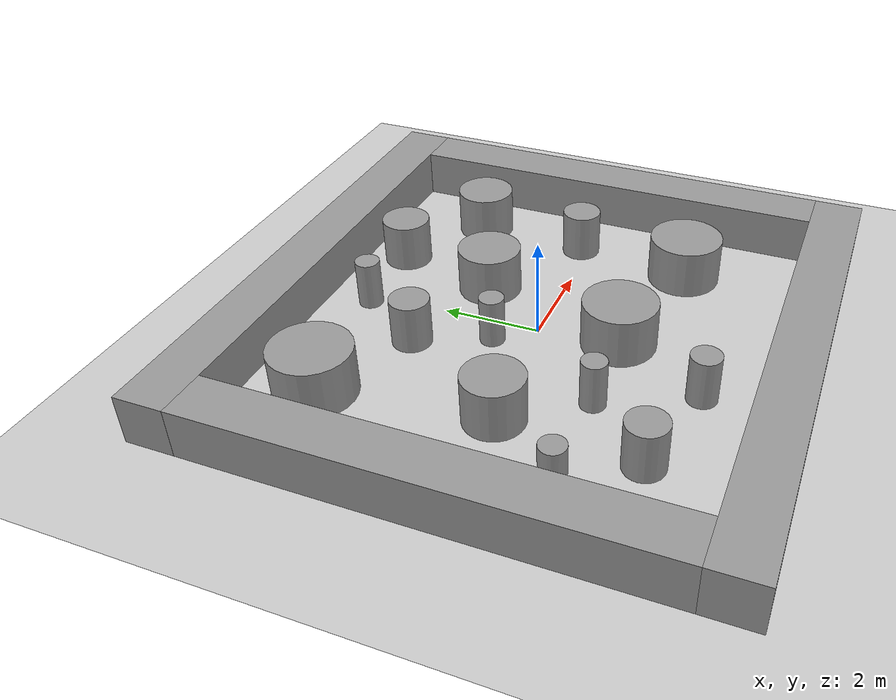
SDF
<?xml version="1.0" ?>
<sdf version="1.6">
  <world name="default">
    <include><uri>model://sun</uri></include>
    <include><uri>model://ground_plane</uri></include>

    <model name='wall_north'>
      <static>true</static>
      <pose>0 5.0 0.5 0 0 0</pose>
      <link name='link'><collision name='collision'><geometry><box><size>11.0 1.0 1.0</size></box></geometry></collision><visual name='visual'><geometry><box><size>11.0 1.0 1.0</size></box></geometry><material><script><uri>file://media/materials/scripts/gazebo.material</uri><name>Gazebo/Grey</name></script></material></visual></link>
    </model>
    <model name='wall_south'>
      <static>true</static>
      <pose>0 -5.0 0.5 0 0 0</pose>
      <link name='link'><collision name='collision'><geometry><box><size>11.0 1.0 1.0</size></box></geometry></collision><visual name='visual'><geometry><box><size>11.0 1.0 1.0</size></box></geometry><material><script><uri>file://media/materials/scripts/gazebo.material</uri><name>Gazebo/Grey</name></script></material></visual></link>
    </model>
    <model name='wall_east'>
      <static>true</static>
      <pose>5.0 0 0.5 0 0 0</pose>
      <link name='link'><collision name='collision'><geometry><box><size>1.0 9.0 1.0</size></box></geometry></collision><visual name='visual'><geometry><box><size>1.0 9.0 1.0</size></box></geometry><material><script><uri>file://media/materials/scripts/gazebo.material</uri><name>Gazebo/Grey</name></script></material></visual></link>
    </model>
    <model name='wall_west'>
      <static>true</static>
      <pose>-5.0 0 0.5 0 0 0</pose>
      <link name='link'><collision name='collision'><geometry><box><size>1.0 9.0 1.0</size></box></geometry></collision><visual name='visual'><geometry><box><size>1.0 9.0 1.0</size></box></geometry><material><script><uri>file://media/materials/scripts/gazebo.material</uri><name>Gazebo/Grey</name></script></material></visual></link>
    </model>
    <model name='obstacle_4'>
      <static>true</static>
      <pose>3.200000000000001 0.20000000000000018 0.5 0 0 0</pose>
      <link name='link'>
        <visual name='visual'>
          <geometry><cylinder><radius>0.4</radius><length>1.0</length></cylinder></geometry>
          <material><script><uri>file://media/materials/scripts/gazebo.material</uri><name>Gazebo/Grey</name></script></material>
        </visual>
        <collision name='collision'>
          <geometry><cylinder><radius>0.4</radius><length>1.0</length></cylinder></geometry>
        </collision>
      </link>
    </model>
    <model name='obstacle_5'>
      <static>true</static>
      <pose>0.20000000000000018 -1.5999999999999996 0.5 0 0 0</pose>
      <link name='link'>
        <visual name='visual'>
          <geometry><cylinder><radius>0.75</radius><length>1.0</length></cylinder></geometry>
          <material><script><uri>file://media/materials/scripts/gazebo.material</uri><name>Gazebo/Grey</name></script></material>
        </visual>
        <collision name='collision'>
          <geometry><cylinder><radius>0.75</radius><length>1.0</length></cylinder></geometry>
        </collision>
      </link>
    </model>
    <model name='obstacle_6'>
      <static>true</static>
      <pose>-1.1499999999999995 2.2 0.5 0 0 0</pose>
      <link name='link'>
        <visual name='visual'>
          <geometry><cylinder><radius>0.4</radius><length>1.0</length></cylinder></geometry>
          <material><script><uri>file://media/materials/scripts/gazebo.material</uri><name>Gazebo/Grey</name></script></material>
        </visual>
        <collision name='collision'>
          <geometry><cylinder><radius>0.4</radius><length>1.0</length></cylinder></geometry>
        </collision>
      </link>
    </model>
    <model name='obstacle_7'>
      <static>true</static>
      <pose>-0.25 3.5999999999999996 0.5 0 0 0</pose>
      <link name='link'>
        <visual name='visual'>
          <geometry><cylinder><radius>0.25</radius><length>1.0</length></cylinder></geometry>
          <material><script><uri>file://media/materials/scripts/gazebo.material</uri><name>Gazebo/Grey</name></script></material>
        </visual>
        <collision name='collision'>
          <geometry><cylinder><radius>0.25</radius><length>1.0</length></cylinder></geometry>
        </collision>
      </link>
    </model>
    <model name='obstacle_8'>
      <static>true</static>
      <pose>-2.6999999999999997 -0.1999999999999993 0.5 0 0 0</pose>
      <link name='link'>
        <visual name='visual'>
          <geometry><cylinder><radius>0.6000000000000001</radius><length>1.0</length></cylinder></geometry>
          <material><script><uri>file://media/materials/scripts/gazebo.material</uri><name>Gazebo/Grey</name></script></material>
        </visual>
        <collision name='collision'>
          <geometry><cylinder><radius>0.6000000000000001</radius><length>1.0</length></cylinder></geometry>
        </collision>
      </link>
    </model>
    <model name='obstacle_9'>
      <static>true</static>
      <pose>-0.8499999999999996 -3.5 0.5 0 0 0</pose>
      <link name='link'>
        <visual name='visual'>
          <geometry><cylinder><radius>0.30000000000000004</radius><length>1.0</length></cylinder></geometry>
          <material><script><uri>file://media/materials/scripts/gazebo.material</uri><name>Gazebo/Grey</name></script></material>
        </visual>
        <collision name='collision'>
          <geometry><cylinder><radius>0.30000000000000004</radius><length>1.0</length></cylinder></geometry>
        </collision>
      </link>
    </model>
    <model name='obstacle_10'>
      <static>true</static>
      <pose>1.1000000000000005 1.5 0.5 0 0 0</pose>
      <link name='link'>
        <visual name='visual'>
          <geometry><cylinder><radius>0.65</radius><length>1.0</length></cylinder></geometry>
          <material><script><uri>file://media/materials/scripts/gazebo.material</uri><name>Gazebo/Grey</name></script></material>
        </visual>
        <collision name='collision'>
          <geometry><cylinder><radius>0.65</radius><length>1.0</length></cylinder></geometry>
        </collision>
      </link>
    </model>
    <model name='obstacle_11'>
      <static>true</static>
      <pose>-2.9 -3.0 0.5 0 0 0</pose>
      <link name='link'>
        <visual name='visual'>
          <geometry><cylinder><radius>0.4</radius><length>1.0</length></cylinder></geometry>
          <material><script><uri>file://media/materials/scripts/gazebo.material</uri><name>Gazebo/Grey</name></script></material>
        </visual>
        <collision name='collision'>
          <geometry><cylinder><radius>0.4</radius><length>1.0</length></cylinder></geometry>
        </collision>
      </link>
    </model>
    <model name='obstacle_12'>
      <static>true</static>
      <pose>2.950000000000001 -2.1999999999999997 0.5 0 0 0</pose>
      <link name='link'>
        <visual name='visual'>
          <geometry><cylinder><radius>0.75</radius><length>1.0</length></cylinder></geometry>
          <material><script><uri>file://media/materials/scripts/gazebo.material</uri><name>Gazebo/Grey</name></script></material>
        </visual>
        <collision name='collision'>
          <geometry><cylinder><radius>0.75</radius><length>1.0</length></cylinder></geometry>
        </collision>
      </link>
    </model>
    <model name='obstacle_13'>
      <static>true</static>
      <pose>-3.15 3.1500000000000004 0.5 0 0 0</pose>
      <link name='link'>
        <visual name='visual'>
          <geometry><cylinder><radius>0.8</radius><length>1.0</length></cylinder></geometry>
          <material><script><uri>file://media/materials/scripts/gazebo.material</uri><name>Gazebo/Grey</name></script></material>
        </visual>
        <collision name='collision'>
          <geometry><cylinder><radius>0.8</radius><length>1.0</length></cylinder></geometry>
        </collision>
      </link>
    </model>
    <model name='obstacle_14'>
      <static>true</static>
      <pose>-3.95 -1.75 0.5 0 0 0</pose>
      <link name='link'>
        <visual name='visual'>
          <geometry><cylinder><radius>0.25</radius><length>1.0</length></cylinder></geometry>
          <material><script><uri>file://media/materials/scripts/gazebo.material</uri><name>Gazebo/Grey</name></script></material>
        </visual>
        <collision name='collision'>
          <geometry><cylinder><radius>0.25</radius><length>1.0</length></cylinder></geometry>
        </collision>
      </link>
    </model>
    <model name='obstacle_15'>
      <static>true</static>
      <pose>3.3499999999999996 2.5500000000000007 0.5 0 0 0</pose>
      <link name='link'>
        <visual name='visual'>
          <geometry><cylinder><radius>0.6000000000000001</radius><length>1.0</length></cylinder></geometry>
          <material><script><uri>file://media/materials/scripts/gazebo.material</uri><name>Gazebo/Grey</name></script></material>
        </visual>
        <collision name='collision'>
          <geometry><cylinder><radius>0.6000000000000001</radius><length>1.0</length></cylinder></geometry>
        </collision>
      </link>
    </model>
    <model name='obstacle_16'>
      <static>true</static>
      <pose>-1.6999999999999997 -1.6999999999999997 0.5 0 0 0</pose>
      <link name='link'>
        <visual name='visual'>
          <geometry><cylinder><radius>0.25</radius><length>1.0</length></cylinder></geometry>
          <material><script><uri>file://media/materials/scripts/gazebo.material</uri><name>Gazebo/Grey</name></script></material>
        </visual>
        <collision name='collision'>
          <geometry><cylinder><radius>0.25</radius><length>1.0</length></cylinder></geometry>
        </collision>
      </link>
    </model>
    <model name='obstacle_17'>
      <static>true</static>
      <pose>-0.5499999999999998 0.75 0.5 0 0 0</pose>
      <link name='link'>
        <visual name='visual'>
          <geometry><cylinder><radius>0.25</radius><length>1.0</length></cylinder></geometry>
          <material><script><uri>file://media/materials/scripts/gazebo.material</uri><name>Gazebo/Grey</name></script></material>
        </visual>
        <collision name='collision'>
          <geometry><cylinder><radius>0.25</radius><length>1.0</length></cylinder></geometry>
        </collision>
      </link>
    </model>
    <model name='obstacle_18'>
      <static>true</static>
      <pose>1.5500000000000007 3.6500000000000004 0.5 0 0 0</pose>
      <link name='link'>
        <visual name='visual'>
          <geometry><cylinder><radius>0.5</radius><length>1.0</length></cylinder></geometry>
          <material><script><uri>file://media/materials/scripts/gazebo.material</uri><name>Gazebo/Grey</name></script></material>
        </visual>
        <collision name='collision'>
          <geometry><cylinder><radius>0.5</radius><length>1.0</length></cylinder></geometry>
        </collision>
      </link>
    </model>
  </world>
</sdf>
